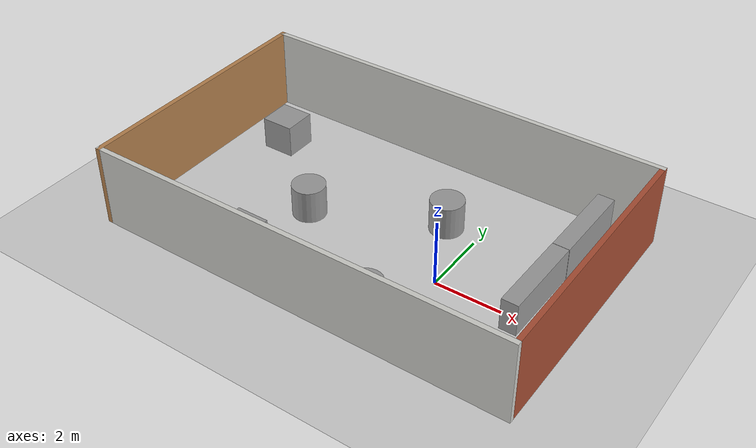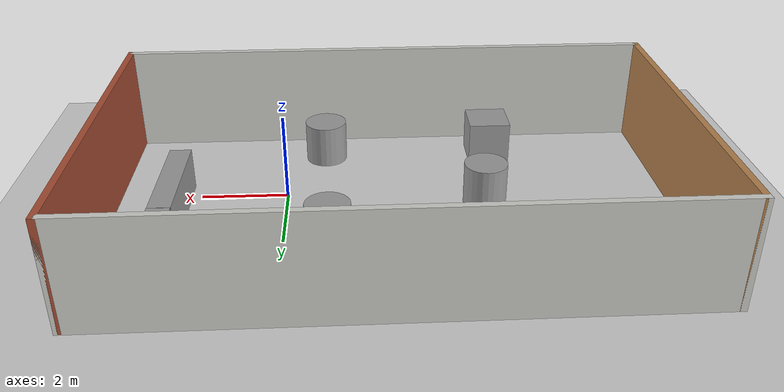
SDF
<sdf version="1.7">
 <world name="default">
  <light name="sun" type="directional">
   <pose>0 0 10 0 -0 0</pose>
   <diffuse>0.8 0.8 0.8 1</diffuse>
   <specular>0.2 0.2 0.2 1</specular>
   <attenuation>
    <range>1000</range>
    <constant>0.9</constant>
    <linear>0.01</linear>
    <quadratic>0.001</quadratic>
   </attenuation>
   <direction>-0.5 0.1 -0.9</direction>
   <spot><inner_angle>0</inner_angle><outer_angle>0</outer_angle><falloff>0</falloff></spot>
  </light>
  <model name="ground_plane">
   <static>1</static>
   <link name="link">
    <collision name="collision">
     <geometry><plane><normal>0 0 1</normal><size>100 100</size></plane></geometry>
     <surface>
      <contact><collide_bitmask>65535</collide_bitmask></contact>
      <friction><ode><mu>100</mu><mu2>50</mu2></ode></friction>
     </surface>
    </collision>
    <visual name="visual">
     <cast_shadows>0</cast_shadows>
     <geometry><plane><normal>0 0 1</normal><size>100 100</size></plane></geometry>
     <material>
      <script><uri>file://media/materials/scripts/gazebo.material</uri><name>Gazebo/Grey</name></script>
     </material>
    </visual>
   </link>
  </model>
  <gravity>0 0 -9.8</gravity>
  <magnetic_field>6e-06 2.3e-05 -4.2e-05</magnetic_field>
  <atmosphere type="adiabatic"/>
  <physics type="ode">
   <max_step_size>0.001</max_step_size>
   <real_time_factor>1</real_time_factor>
   <real_time_update_rate>1000</real_time_update_rate>
  </physics>
  <scene><ambient>0.4 0.4 0.4 1</ambient><background>0.7 0.7 0.7 1</background><shadows>1</shadows></scene>
  <spherical_coordinates>
   <surface_model>EARTH_WGS84</surface_model>
   <latitude_deg>0</latitude_deg>
   <longitude_deg>0</longitude_deg>
   <elevation>0</elevation>
   <heading_deg>0</heading_deg>
  </spherical_coordinates>
  <model name="box_house">
   <pose>-2.48133 0.90904 0 0 -0 0</pose>
   <link name="Wall_1">
    <collision name="Wall_1_Collision">
     <geometry><box><size>13 0.15 2.5</size></box></geometry>
     <pose>0 0 1.25 0 -0 0</pose>
    </collision>
    <visual name="Wall_1_Visual">
     <pose>0 0 1.25 0 -0 0</pose>
     <geometry><box><size>13 0.15 2.5</size></box></geometry>
     <material>
      <script><uri>file://media/materials/scripts/gazebo.material</uri><name>Gazebo/CeilingTiled</name></script>
      <ambient>1 1 1 1</ambient>
     </material>
     <meta><layer>0</layer></meta>
    </visual>
    <pose>0 3.925 0 0 -0 0</pose>
   </link>
   <link name="Wall_2">
    <collision name="Wall_2_Collision">
     <geometry><box><size>8 0.15 2.5</size></box></geometry>
     <pose>0 0 1.25 0 -0 0</pose>
    </collision>
    <visual name="Wall_2_Visual">
     <pose>0 0 1.25 0 -0 0</pose>
     <geometry><box><size>8 0.15 2.5</size></box></geometry>
     <material>
      <script><uri>file://media/materials/scripts/gazebo.material</uri><name>Gazebo/Bricks</name></script>
      <ambient>1 1 1 1</ambient>
     </material>
     <meta><layer>0</layer></meta>
    </visual>
    <pose>6.425 -0 0 0 -0 -1.5708</pose>
   </link>
   <link name="Wall_3">
    <collision name="Wall_3_Collision">
     <geometry><box><size>13 0.15 2.5</size></box></geometry>
     <pose>0 0 1.25 0 -0 0</pose>
    </collision>
    <visual name="Wall_3_Visual">
     <pose>0 0 1.25 0 -0 0</pose>
     <geometry><box><size>13 0.15 2.5</size></box></geometry>
     <material>
      <script><uri>file://media/materials/scripts/gazebo.material</uri><name>Gazebo/CeilingTiled</name></script>
      <ambient>1 1 1 1</ambient>
     </material>
     <meta><layer>0</layer></meta>
    </visual>
    <pose>0 -3.925 0 0 -0 3.14159</pose>
   </link>
   <link name="Wall_4">
    <collision name="Wall_4_Collision">
     <geometry><box><size>8 0.15 2.5</size></box></geometry>
     <pose>0 0 1.25 0 -0 0</pose>
    </collision>
    <visual name="Wall_4_Visual">
     <pose>0 0 1.25 0 -0 0</pose>
     <geometry><box><size>8 0.15 2.5</size></box></geometry>
     <material>
      <script><uri>file://media/materials/scripts/gazebo.material</uri><name>Gazebo/Wood</name></script>
      <ambient>1 1 1 1</ambient>
     </material>
     <meta><layer>0</layer></meta>
    </visual>
    <pose>-6.425 -0 0 0 -0 1.5708</pose>
   </link>
   <static>1</static>
  </model>
  <model name="unit_box">
   <pose>-7.27143 2.88995 0.499995 0 -1e-05 0</pose>
   <link name="link">
    <inertial>
     <mass>1</mass>
     <inertia>
      <ixx>0.166667</ixx>
      <ixy>0</ixy>
      <ixz>0</ixz>
      <iyy>0.166667</iyy>
      <iyz>0</iyz>
      <izz>0.166667</izz>
     </inertia>
    </inertial>
    <collision name="collision"><geometry><box><size>1 1 1</size></box></geometry></collision>
    <visual name="visual">
     <geometry><box><size>1 1 1</size></box></geometry>
     <material>
      <script><name>Gazebo/Grey</name><uri>file://media/materials/scripts/gazebo.material</uri></script>
     </material>
    </visual>
   </link>
  </model>
  <model name="unit_cylinder">
   <pose>-4.57747 0.509874 0.49999 0 -0 0</pose>
   <link name="link">
    <inertial>
     <mass>1</mass>
     <inertia><ixx>0.145833</ixx><ixy>0</ixy><ixz>0</ixz><iyy>0.145833</iyy><iyz>0</iyz><izz>0.125</izz></inertia>
    </inertial>
    <collision name="collision">
     <geometry><cylinder><radius>0.5</radius><length>1</length></cylinder></geometry>
    </collision>
    <visual name="visual">
     <geometry><cylinder><radius>0.5</radius><length>1</length></cylinder></geometry>
     <material>
      <script><name>Gazebo/Grey</name><uri>file://media/materials/scripts/gazebo.material</uri></script>
     </material>
    </visual>
   </link>
  </model>
  <model name="unit_box_0">
   <pose>-4.96407 -1.93893 0.499995 0 1e-05 -2e-06</pose>
   <link name="link">
    <inertial>
     <mass>1</mass>
     <inertia>
      <ixx>0.166667</ixx>
      <ixy>0</ixy>
      <ixz>0</ixz>
      <iyy>0.166667</iyy>
      <iyz>0</iyz>
      <izz>0.166667</izz>
     </inertia>
    </inertial>
    <collision name="collision"><geometry><box><size>1 1 1</size></box></geometry></collision>
    <visual name="visual">
     <geometry><box><size>1 1 1</size></box></geometry>
     <material>
      <script><name>Gazebo/Grey</name><uri>file://media/materials/scripts/gazebo.material</uri></script>
     </material>
    </visual>
   </link>
  </model>
  <model name="unit_cylinder_0">
   <pose>-0.98814 2.12658 0.499997 2e-06 -0 0</pose>
   <link name="link">
    <inertial>
     <mass>1</mass>
     <inertia><ixx>0.145833</ixx><ixy>0</ixy><ixz>0</ixz><iyy>0.145833</iyy><iyz>0</iyz><izz>0.125</izz></inertia>
    </inertial>
    <collision name="collision">
     <geometry><cylinder><radius>0.5</radius><length>1</length></cylinder></geometry>
    </collision>
    <visual name="visual">
     <geometry><cylinder><radius>0.5</radius><length>1</length></cylinder></geometry>
     <material>
      <script><name>Gazebo/Grey</name><uri>file://media/materials/scripts/gazebo.material</uri></script>
     </material>
    </visual>
   </link>
  </model>
  <model name="unit_cylinder_1">
   <pose>-0.890595 -1.90635 0.499994 -3e-06 -1e-06 -0</pose>
   <link name="link">
    <inertial>
     <mass>1</mass>
     <inertia><ixx>0.145833</ixx><ixy>0</ixy><ixz>0</ixz><iyy>0.145833</iyy><iyz>0</iyz><izz>0.125</izz></inertia>
    </inertial>
    <collision name="collision">
     <geometry><cylinder><radius>0.5</radius><length>1</length></cylinder></geometry>
    </collision>
    <visual name="visual">
     <geometry><cylinder><radius>0.5</radius><length>1</length></cylinder></geometry>
     <material>
      <script><name>Gazebo/Grey</name><uri>file://media/materials/scripts/gazebo.material</uri></script>
     </material>
    </visual>
   </link>
  </model>
  <model name="unit_box_0_clone">
   <pose>2.49496 0.790692 0.499913 -6.6e-05 -0 -0.011348</pose>
   <link name="link">
    <inertial>
     <mass>1</mass>
     <inertia>
      <ixx>0.166667</ixx>
      <ixy>0</ixy>
      <ixz>0</ixz>
      <iyy>0.166667</iyy>
      <iyz>0</iyz>
      <izz>0.166667</izz>
     </inertia>
    </inertial>
    <collision name="collision"><geometry><box><size>0.50244 2.63896 1</size></box></geometry></collision>
    <visual name="visual">
     <geometry><box><size>0.50244 2.63896 1</size></box></geometry>
     <material>
      <script><name>Gazebo/Grey</name><uri>file://media/materials/scripts/gazebo.material</uri></script>
     </material>
    </visual>
   </link>
  </model>
  <model name="unit_box_0_clone_clone">
   <pose>2.53047 3.43667 0.499999 0 4e-06 -0.011669</pose>
   <link name="link">
    <inertial>
     <mass>1</mass>
     <inertia>
      <ixx>0.166667</ixx>
      <ixy>0</ixy>
      <ixz>0</ixz>
      <iyy>0.166667</iyy>
      <iyz>0</iyz>
      <izz>0.166667</izz>
     </inertia>
    </inertial>
    <collision name="collision"><geometry><box><size>0.50244 2.63896 1</size></box></geometry></collision>
    <visual name="visual">
     <geometry><box><size>0.50244 2.63896 1</size></box></geometry>
     <material>
      <script><name>Gazebo/Grey</name><uri>file://media/materials/scripts/gazebo.material</uri></script>
     </material>
    </visual>
   </link>
  </model>
 </world>
</sdf>
